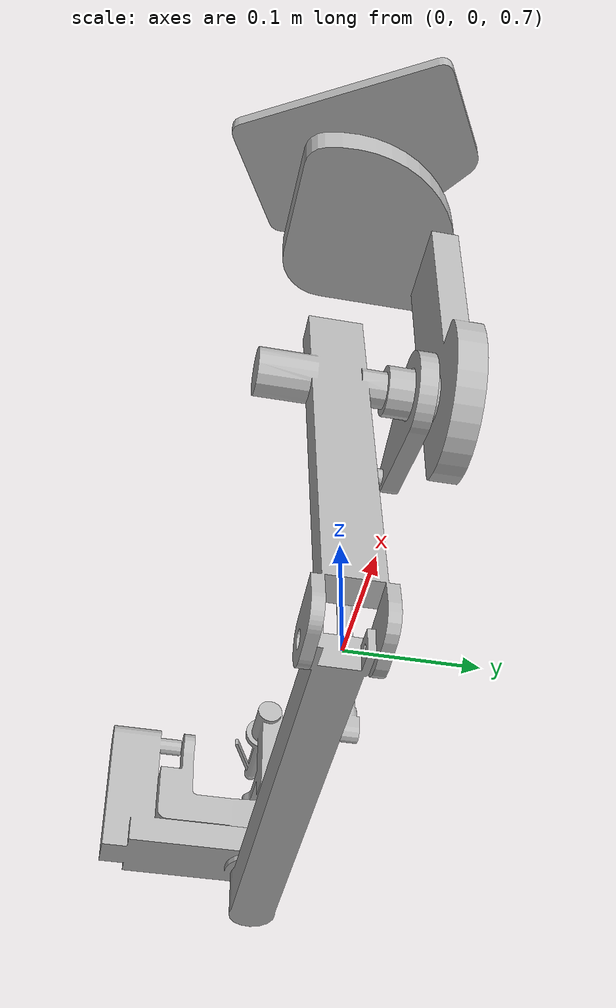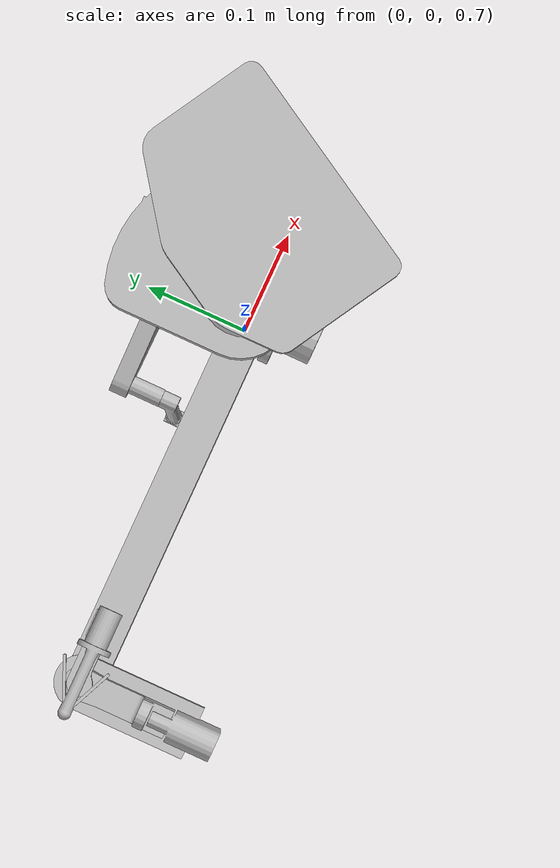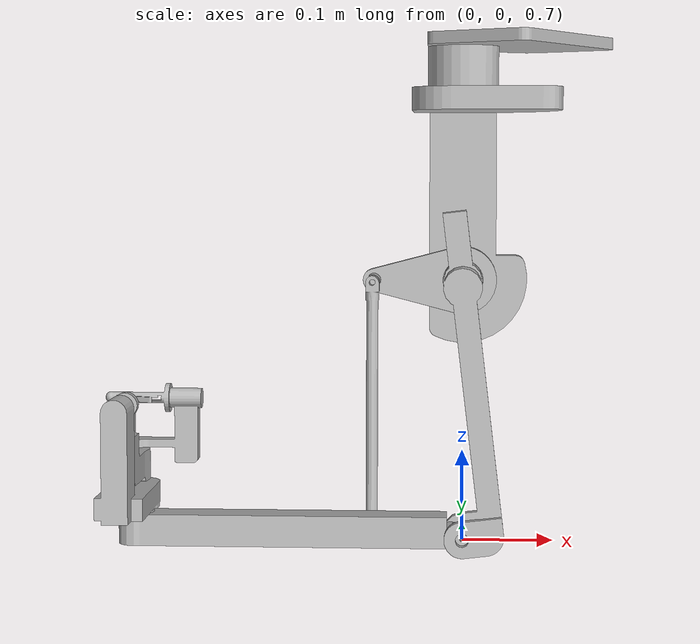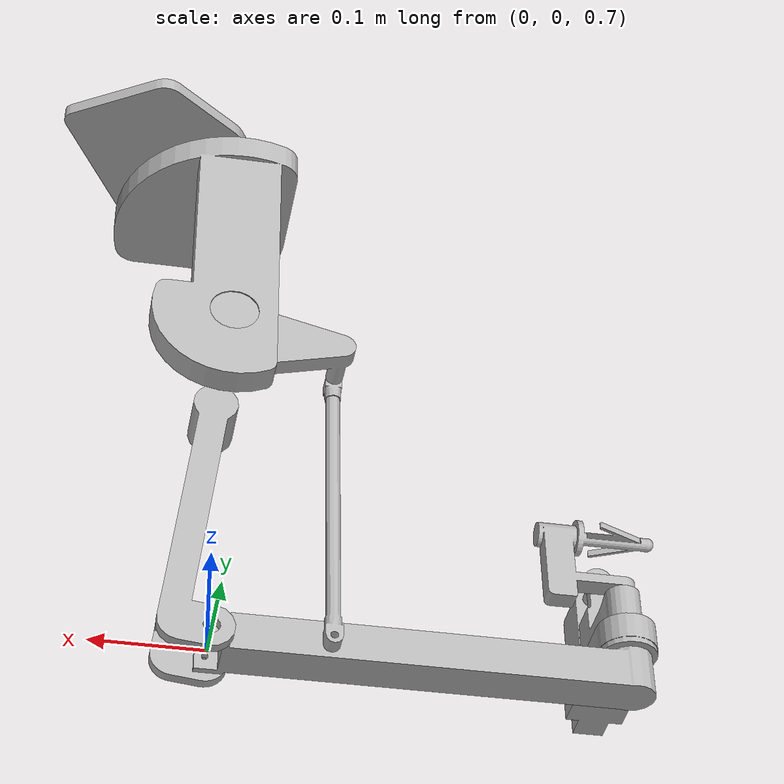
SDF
<sdf version="1.6">
  <model name="mtm">

  <include>
    <uri>model://MTM</uri>
      <name>MTM</name>
      <pose> 0 0 0.2 0 0 0</pose>
  </include>

  <joint name='MTM::rev_joint' type='fixed'>
   <child>MTM::right_top_panel</child>
   <parent>world</parent>
   <axis>
     <limit>
       <lower>-1.57</lower>
       <upper>1.57</upper>
     </limit>
     <dynamics>
       <damping>0</damping>
     </dynamics>
     <xyz>0 0 1</xyz>
   </axis>
 </joint>

 <plugin name='dvrk_plugins' filename='libdvrk_plugins.so'/>
 </model>
</sdf>

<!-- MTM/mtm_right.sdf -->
<sdf version='1.6'>
  <model name='dvrk_mtm'>
    <link name='right_top_panel'>
      <pose>0 0 1 0 -0 0</pose>
      <inertial>
        <pose>0.03648 0.008713 0.040499 0 -0 0</pose>
        <mass>0.58739</mass>
        <inertia>
          <ixx>0.001</ixx>
          <ixy>0</ixy>
          <ixz>0</ixz>
          <iyy>0.001</iyy>
          <iyz>0</iyz>
          <izz>0.001</izz>
        </inertia>
      </inertial>
      <collision name='right_top_panel_collision'>
        <pose>0 0 0 0 0 0</pose>
        <geometry>
          <mesh>
            <scale>1 1 1</scale>
            <uri>model://MTM/meshes/right_top_panel.STL</uri>
          </mesh>
        </geometry>
      </collision>
      <visual name='right_top_panel_visual'>
        <pose>0 0 0 0 -0 0</pose>
        <geometry>
          <mesh>
            <scale>1 1 1</scale>
            <uri>model://MTM/meshes/right_top_panel.STL</uri>
          </mesh>
        </geometry>
      </visual>
    </link>

    <link name='right_outer_yaw_link'>
      <pose>0 0 0.78463 0 0 0</pose>
      <inertial>
        <pose>0.013424 0.062051 0.13219 0 -0 0</pose>
        <mass>2</mass>
        <inertia>
          <ixx>0.003</ixx>
          <ixy>0</ixy>
          <ixz>0</ixz>
          <iyy>0.003</iyy>
          <iyz>0</iyz>
          <izz>0.003</izz>
        </inertia>
      </inertial>
      <collision name='right_outer_yaw_link_collision'>
        <pose>0 0 0 0 -0 0</pose>
        <geometry>
          <mesh>
            <scale>1 1 1</scale>
            <uri>model://MTM/meshes/right_outer_yaw_link.STL</uri>
          </mesh>
        </geometry>
      </collision>
      <visual name='right_outer_yaw_link_visual'>
        <pose>0 0 0 0 -0 0</pose>
        <geometry>
          <mesh>
            <scale>1 1 1</scale>
            <uri>model://MTM/meshes/right_outer_yaw_link.STL</uri>
          </mesh>
        </geometry>
      </visual>
    </link>

    <joint name='right_outer_yaw_joint' type='revolute'>
      <child>right_outer_yaw_link</child>
      <parent>right_top_panel</parent>
      <axis>
        <xyz>0 0 1</xyz>
        <limit>
          <lower>-1</lower>
          <upper>1</upper>
          <effort>1</effort>
          <velocity>1</velocity>
        </limit>
        <dynamics>
          <spring_reference>0</spring_reference>
          <spring_stiffness>0</spring_stiffness>
        </dynamics>
        <use_parent_model_frame>1</use_parent_model_frame>
      </axis>
    </joint>

    <link name='right_back_parallel_link'>
      <pose frame=''>0 0 0.78463 -1.57079 1.57079 0</pose>
      <inertial>
        <pose frame=''>0.076362 -0.007849 0.00814 0 -0 0</pose>
        <mass>2</mass>
        <inertia>
          <ixx>0.001</ixx>
          <ixy>0</ixy>
          <ixz>0</ixz>
          <iyy>0.035</iyy>
          <iyz>0</iyz>
          <izz>0.035</izz>
        </inertia>
      </inertial>
      <collision name='right_back_parallel_link_collision'>
        <pose frame=''>0 0 0 0 -0 0</pose>
        <geometry>
          <mesh>
            <scale>1 1 1</scale>
            <uri>model://MTM/meshes/right_back_parallel_link.STL</uri>
          </mesh>
        </geometry>
      </collision>
      <visual name='right_back_parallel_link_visual'>
        <pose frame=''>0 0 0 0 -0 0</pose>
        <geometry>
          <mesh>
            <scale>1 1 1</scale>
            <uri>model://MTM/meshes/right_back_parallel_link.STL</uri>
          </mesh>
        </geometry>
      </visual>
    </link>
    <joint name='right_shoulder_pitch_joint' type='revolute'>
      <child>right_back_parallel_link</child>
      <parent>right_outer_yaw_link</parent>
      <axis>
        <xyz>4e-06 1 -0</xyz>
        <limit>
          <lower>-1</lower>
          <upper>1</upper>
          <effort>1</effort>
          <velocity>1</velocity>
        </limit>
        <dynamics>
          <spring_reference>0</spring_reference>
          <spring_stiffness>0</spring_stiffness>
        </dynamics>
        <use_parent_model_frame>1</use_parent_model_frame>
      </axis>
    </joint>

    <link name='right_bottom_parallel_link'>
      <pose frame=''>0 -0 0.50496  1.57079 0 3.1415926</pose>
      <inertial>
        <pose frame=''>0.18263 0.005514 0 0 -0 0</pose>
        <mass>1</mass>
        <inertia>
          <ixx>0.0002</ixx>
          <ixy>0</ixy>
          <ixz>0</ixz>
          <iyy>0.02</iyy>
          <iyz>0</iyz>
          <izz>0.02</izz>
        </inertia>
      </inertial>
      <collision name='right_bottom_parallel_link_collision'>
        <pose frame=''>0 0 0 0 -0 0</pose>
        <geometry>
          <mesh>
            <scale>1 1 1</scale>
            <uri>model://MTM/meshes/right_bottom_parallel_link.STL</uri>
          </mesh>
        </geometry>
      </collision>
      <visual name='right_bottom_parallel_link_visual'>
        <pose frame=''>0 0 0 0 -0 0</pose>
        <geometry>
          <mesh>
            <scale>1 1 1</scale>
            <uri>model://MTM/meshes/right_bottom_parallel_link.STL</uri>
          </mesh>
        </geometry>
      </visual>
    </link>
    <joint name='right_elbow_pitch_joint' type='revolute'>
      <child>right_bottom_parallel_link</child>
      <parent>right_back_parallel_link</parent>
      <axis>
        <xyz>0 1 0</xyz>
        <limit>
          <lower>-1</lower>
          <upper>1</upper>
          <effort>1</effort>
          <velocity>1</velocity>
        </limit>
        <dynamics>
          <spring_reference>0</spring_reference>
          <spring_stiffness>0</spring_stiffness>
        </dynamics>
        <use_parent_model_frame>1</use_parent_model_frame>
      </axis>
    </joint>

    <link name='right_wrist_platform_link'>
      <pose frame=''>-0.364091 0 0.656544 0 0 3.1415926</pose>
      <inertial>
        <pose frame=''>0 0.075884 -0.079722 0 -0 0</pose>
        <mass>0.5</mass>
        <inertia>
          <ixx>0.0002</ixx>
          <ixy>0</ixy>
          <ixz>0</ixz>
          <iyy>0.0002</iyy>
          <iyz>0</iyz>
          <izz>0.0002</izz>
        </inertia>
      </inertial>
      <collision name='right_wrist_platform_link_collision'>
        <pose frame=''>0 0 0 0 -0 0</pose>
        <geometry>
          <mesh>
            <scale>1 1 1</scale>
            <uri>model://MTM/meshes/right_wrist_platform_link.STL</uri>
          </mesh>
        </geometry>
      </collision>
      <visual name='right_wrist_platform_link_visual'>
        <pose frame=''>0 0 0 0 -0 0</pose>
        <geometry>
          <mesh>
            <scale>1 1 1</scale>
            <uri>model://MTM/meshes/right_wrist_platform_link.STL</uri>
          </mesh>
        </geometry>
      </visual>
    </link>
    <joint name='right_wrist_platform_joint' type='revolute'>
      <child>right_wrist_platform_link</child>
      <parent>right_bottom_parallel_link</parent>
      <axis>
        <xyz>0 0 1</xyz>
        <limit>
          <lower>-1</lower>
          <upper>1</upper>
          <effort>1</effort>
          <velocity>1</velocity>
        </limit>
        <dynamics>
          <spring_reference>0</spring_reference>
          <spring_stiffness>0</spring_stiffness>
        </dynamics>
        <use_parent_model_frame>1</use_parent_model_frame>
      </axis>
    </joint>
    <link name='right_wrist_pitch_link'>
      <pose frame=''>-0.364091 0 0.656544 1.5708 0 3.1415926</pose>
      <inertial>
        <pose frame=''>9.6e-05 -0.061955 -0.044889 0 -0 0</pose>
        <mass>0.1</mass>
        <inertia>
          <ixx>0.00001</ixx>
          <ixy>0</ixy>
          <ixz>0</ixz>
          <iyy>0.00001</iyy>
          <iyz>0</iyz>
          <izz>0.00001</izz>
        </inertia>
      </inertial>
      <collision name='right_wrist_pitch_link_collision'>
        <pose frame=''>0 0 0 0 -0 0</pose>
        <geometry>
          <mesh>
            <scale>1 1 1</scale>
            <uri>model://MTM/meshes/right_wrist_pitch_link.STL</uri>
          </mesh>
        </geometry>
      </collision>
      <visual name='right_wrist_pitch_link_visual'>
        <pose frame=''>0 0 0 0 -0 0</pose>
        <geometry>
          <mesh>
            <scale>1 1 1</scale>
            <uri>model://MTM/meshes/right_wrist_pitch_link.STL</uri>
          </mesh>
        </geometry>
      </visual>
    </link>
    <joint name='right_wrist_pitch_joint' type='revolute'>
      <child>right_wrist_pitch_link</child>
      <parent>right_wrist_platform_link</parent>
      <axis>
        <xyz>0 1 -0</xyz>
        <limit>
          <lower>-1</lower>
          <upper>1</upper>
          <effort>1</effort>
          <velocity>1</velocity>
        </limit>
        <dynamics>
          <spring_reference>0</spring_reference>
          <spring_stiffness>0</spring_stiffness>
        </dynamics>
        <use_parent_model_frame>1</use_parent_model_frame>
      </axis>
    </joint>
    <link name='right_wrist_yaw_link'>
      <pose frame=''>-0.364091 0 0.656544 3.1389 3.14159 1.5708</pose>
      <inertial>
        <pose frame=''>-0.002136 0.049256 -0.031864 0 -0 0</pose>
        <mass>0.05</mass>
        <inertia>
          <ixx>0.00001</ixx>
          <ixy>0</ixy>
          <ixz>0</ixz>
          <iyy>0.00001</iyy>
          <iyz>0</iyz>
          <izz>0.00001</izz>
        </inertia>
      </inertial>
      <collision name='right_wrist_yaw_link_collision'>
        <pose frame=''>0 0 0 0 -0 0</pose>
        <geometry>
          <mesh>
            <scale>1 1 1</scale>
            <uri>model://MTM/meshes/right_wrist_yaw_link.STL</uri>
          </mesh>
        </geometry>
      </collision>
      <visual name='right_wrist_yaw_link_visual'>
        <pose frame=''>0 0 0 0 -0 0</pose>
        <geometry>
          <mesh>
            <scale>1 1 1</scale>
            <uri>model://MTM/meshes/right_wrist_yaw_link.STL</uri>
          </mesh>
        </geometry>
      </visual>
    </link>
    <joint name='right_wrist_yaw_joint' type='revolute'>
      <child>right_wrist_yaw_link</child>
      <parent>right_wrist_pitch_link</parent>
      <axis>
        <xyz>0 0 1</xyz>
        <limit>
          <lower>-1</lower>
          <upper>1</upper>
          <effort>1</effort>
          <velocity>1</velocity>
        </limit>
        <dynamics>
          <spring_reference>0</spring_reference>
          <spring_stiffness>0</spring_stiffness>
        </dynamics>
        <use_parent_model_frame>1</use_parent_model_frame>
      </axis>
    </joint>
    <link name='right_wrist_roll_link'>
      <pose frame=''>-0.364091 0 0.656544 -1.57349 3.14159 1.5708</pose>
      <inertial>
        <pose frame=''>0 0 -0.014612 0 0 0</pose>
        <mass>0.02</mass>
        <inertia>
          <ixx>0.00001</ixx>
          <ixy>0</ixy>
          <ixz>0</ixz>
          <iyy>0.00001</iyy>
          <iyz>0</iyz>
          <izz>0.000001</izz>
        </inertia>
      </inertial>
      <collision name='right_wrist_roll_link_collision'>
        <pose frame=''>0 0 0 0 -0 0</pose>
        <geometry>
          <mesh>
            <scale>1 1 1</scale>
            <uri>model://MTM/meshes/right_wrist_roll_link.STL</uri>
          </mesh>
        </geometry>
      </collision>
      <visual name='right_wrist_roll_link_visual'>
        <pose frame=''>0 0 0 0 -0 0</pose>
        <geometry>
          <mesh>
            <scale>1 1 1</scale>
            <uri>model://MTM/meshes/right_wrist_roll_link.STL</uri>
          </mesh>
        </geometry>
      </visual>
    </link>
    <joint name='right_wrist_roll_joint' type='revolute'>
      <child>right_wrist_roll_link</child>
      <parent>right_wrist_yaw_link</parent>
      <axis>
        <xyz>-1 0 0</xyz>
        <limit>
          <lower>-1</lower>
          <upper>1</upper>
          <effort>1</effort>
          <velocity>1</velocity>
        </limit>
        <dynamics>
          <spring_reference>0</spring_reference>
          <spring_stiffness>0</spring_stiffness>
        </dynamics>
        <use_parent_model_frame>1</use_parent_model_frame>
      </axis>
    </joint>

    <link name='right_top_parallel_link'>
      <pose frame=''>0 0 0.78463 1.5708 0 3.14159</pose>
      <inertial>
        <pose frame=''>0 0 0 0 0 0</pose>
        <mass>2</mass>
        <inertia>
          <ixx>0.003</ixx>
          <ixy>0</ixy>
          <ixz>0</ixz>
          <iyy>0.003</iyy>
          <iyz>0</iyz>
          <izz>0.003</izz>
        </inertia>
      </inertial>
      <collision name='right_top_parallel_link_collision'>
        <pose frame=''>0 0 0 0 -0 0</pose>
        <geometry>
          <mesh>
            <scale>1 1 1</scale>
            <uri>model://MTM/meshes/right_top_parallel_link.STL</uri>
          </mesh>
        </geometry>
      </collision>
      <visual name='right_top_parallel_link_visual'>
        <pose frame=''>0 0 0 0 -0 0</pose>
        <geometry>
          <mesh>
            <scale>1 1 1</scale>
            <uri>model://MTM/meshes/right_top_parallel_link.STL</uri>
          </mesh>
        </geometry>
      </visual>
    </link>
    <joint name='right_shoulder_pitch_parallel_joint' type='revolute'>
      <child>right_top_parallel_link</child>
      <parent>right_outer_yaw_link</parent>
      <axis>
        <xyz>0 1 0</xyz>
        <limit>
          <lower>-1</lower>
          <upper>1</upper>
          <effort>0</effort>
          <velocity>0</velocity>
        </limit>
        <dynamics>
          <spring_reference>0</spring_reference>
          <spring_stiffness>0</spring_stiffness>
        </dynamics>
        <use_parent_model_frame>1</use_parent_model_frame>
      </axis>
    </joint>

    <link name='right_front_parallel_link'>
      <pose frame=''>-0.1011 0 0.78463 1.57206 1.5679 -3.14033</pose>
      <inertial>
        <pose frame=''>0.1397 0 0.0265 0 -0 0</pose>
        <mass>0.05</mass>
        <inertia>
          <ixx>0.000001</ixx>
          <ixy>0</ixy>
          <ixz>0</ixz>
          <iyy>0.0002</iyy>
          <iyz>0</iyz>
          <izz>0.0002</izz>
        </inertia>
      </inertial>
      <collision name='right_front_parallel_link_collision'>
        <pose frame=''>0 0 0 0 -0 0</pose>
        <geometry>
          <mesh>
            <scale>1 1 1</scale>
            <uri>model://MTM/meshes/right_front_parallel_link.STL</uri>
          </mesh>
        </geometry>
      </collision>
      <visual name='right_front_parallel_link_visual'>
        <pose frame=''>0 0 0 0 -0 0</pose>
        <geometry>
          <mesh>
            <scale>1 1 1</scale>
            <uri>model://MTM/meshes/right_front_parallel_link.STL</uri>
          </mesh>
        </geometry>
      </visual>
    </link>
    <joint name='right_front_shoulder_pitch_joint' type='revolute'>
      <child>right_front_parallel_link</child>
      <parent>right_top_parallel_link</parent>
      <axis>
        <xyz>0 1 0</xyz>
        <limit>
          <lower>-1</lower>
          <upper>1</upper>
          <effort>0</effort>
          <velocity>0</velocity>
        </limit>
        <dynamics>
          <spring_reference>0</spring_reference>
          <spring_stiffness>0</spring_stiffness>
        </dynamics>
        <use_parent_model_frame>1</use_parent_model_frame>
      </axis>
    </joint>

    <joint name='right_front_elbow_pitch_joint' type='revolute'>
      <pose>0.1011 0 0 0 0 0 </pose>
      <child>right_bottom_parallel_link</child>
      <parent>right_front_parallel_link</parent>
      <axis>
        <xyz>0 1 0</xyz>
        <limit>
          <lower>-3.14</lower>
          <upper>3.14</upper>
          <effort>100</effort>
          <velocity>10</velocity>
        </limit>
        <dynamics>
          <spring_reference>0</spring_reference>
          <spring_stiffness>0</spring_stiffness>
        </dynamics>
        <use_parent_model_frame>1</use_parent_model_frame>
      </axis>
    </joint>

  </model>
</sdf>
